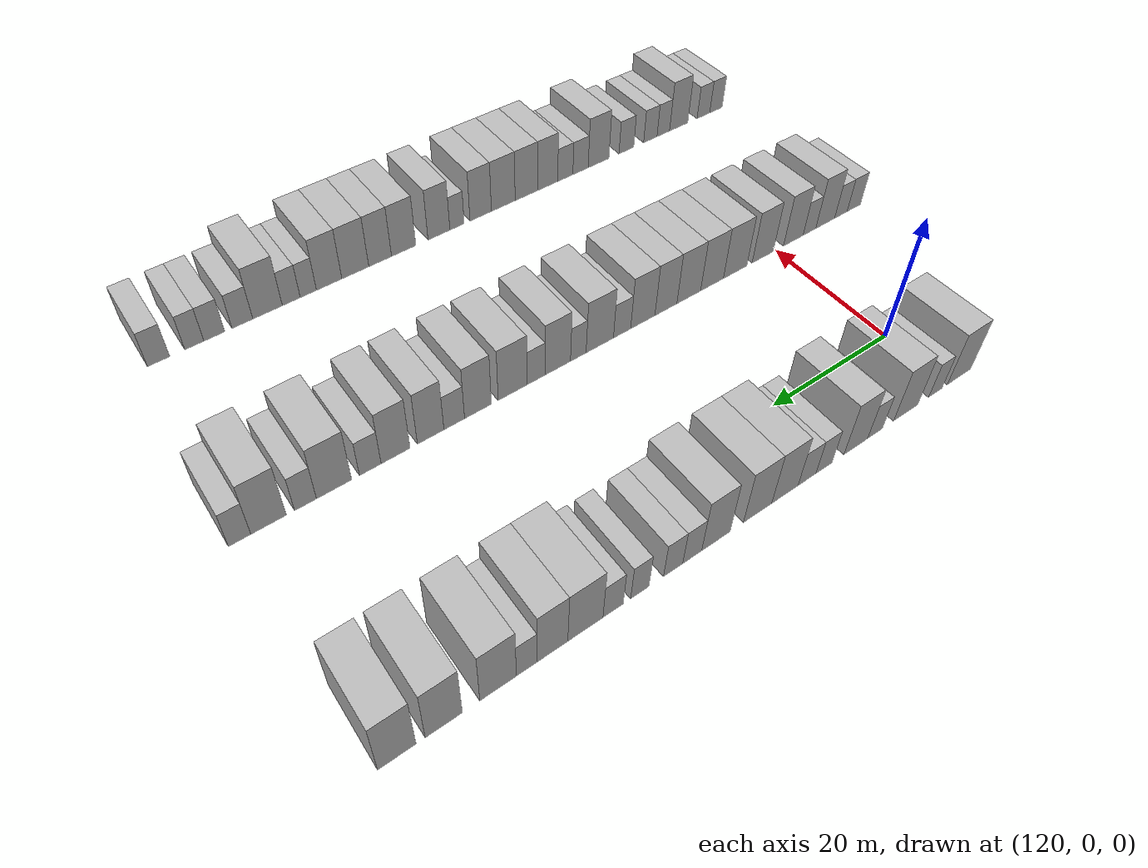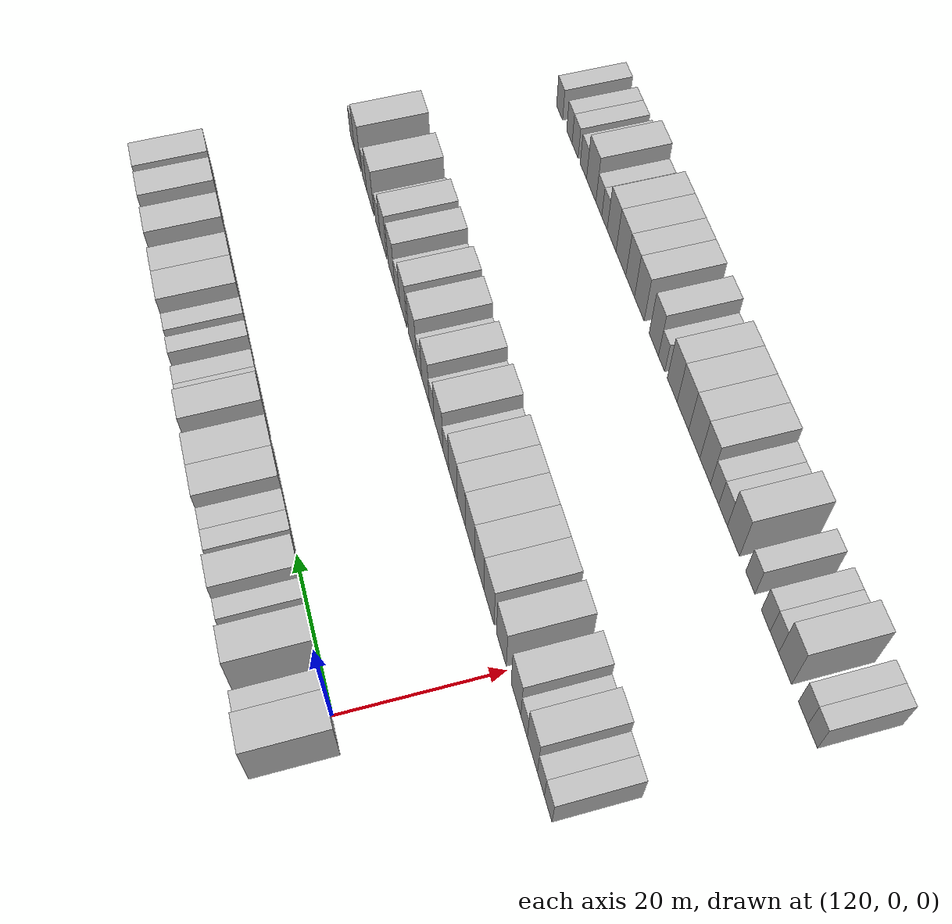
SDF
<sdf version="1.6">
 <world name="default">
  <model name="building_790">
   <static>1</static>
   <pose>115.0000 -2.2010 0 0.000000 0.000000 0.000000</pose>
   <link name="link">
    <pose>0 0 4.50 0 0 0</pose>
    <collision name="collision"><geometry><box><size>10.0000 4.4708 9.0000</size></box></geometry></collision>
    <visual name="visual">
     <cast_shadows>0</cast_shadows>
     <geometry><box><size>10.0000 4.4708 9.0000</size></box></geometry>
     <material>
      <script>
       <uri>model://HANNAS_wall/materials/scripts</uri>
       <uri>model://HANNAS_wall/materials/textures</uri>
       <name>vrc/HANNAS_wall</name>
      </script>
     </material>
    </visual>
   </link>
  </model>
  <model name="building_791">
   <static>1</static>
   <pose>115.0000 2.2759 0 0.000000 0.000000 0.000000</pose>
   <link name="link">
    <pose>0 0 3.00 0 0 0</pose>
    <collision name="collision"><geometry><box><size>10.0000 2.4830 6.0000</size></box></geometry></collision>
    <visual name="visual">
     <cast_shadows>0</cast_shadows>
     <geometry><box><size>10.0000 2.4830 6.0000</size></box></geometry>
     <material>
      <script>
       <uri>model://HANNAS_wall/materials/scripts</uri>
       <uri>model://HANNAS_wall/materials/textures</uri>
       <name>vrc/HANNAS_wall</name>
      </script>
     </material>
    </visual>
   </link>
  </model>
  <model name="building_792">
   <static>1</static>
   <pose>115.0000 7.6860 0 0.000000 0.000000 0.000000</pose>
   <link name="link">
    <pose>0 0 4.50 0 0 0</pose>
    <collision name="collision"><geometry><box><size>10.0000 4.3371 9.0000</size></box></geometry></collision>
    <visual name="visual">
     <cast_shadows>0</cast_shadows>
     <geometry><box><size>10.0000 4.3371 9.0000</size></box></geometry>
     <material>
      <script>
       <uri>model://HANNAS_wall/materials/scripts</uri>
       <uri>model://HANNAS_wall/materials/textures</uri>
       <name>vrc/HANNAS_wall</name>
      </script>
     </material>
    </visual>
   </link>
  </model>
  <model name="building_793">
   <static>1</static>
   <pose>115.0000 13.1247 0 0.000000 0.000000 0.000000</pose>
   <link name="link">
    <pose>0 0 3.00 0 0 0</pose>
    <collision name="collision"><geometry><box><size>10.0000 2.5404 6.0000</size></box></geometry></collision>
    <visual name="visual">
     <cast_shadows>0</cast_shadows>
     <geometry><box><size>10.0000 2.5404 6.0000</size></box></geometry>
     <material>
      <script>
       <uri>model://HANNAS_wall/materials/scripts</uri>
       <uri>model://HANNAS_wall/materials/textures</uri>
       <name>vrc/HANNAS_wall</name>
      </script>
     </material>
    </visual>
   </link>
  </model>
  <model name="building_794">
   <static>1</static>
   <pose>115.0000 16.4111 0 0.000000 0.000000 0.000000</pose>
   <link name="link">
    <pose>0 0 4.50 0 0 0</pose>
    <collision name="collision"><geometry><box><size>10.0000 4.0324 9.0000</size></box></geometry></collision>
    <visual name="visual">
     <cast_shadows>0</cast_shadows>
     <geometry><box><size>10.0000 4.0324 9.0000</size></box></geometry>
     <material>
      <script>
       <uri>model://HANNAS_wall/materials/scripts</uri>
       <uri>model://HANNAS_wall/materials/textures</uri>
       <name>vrc/HANNAS_wall</name>
      </script>
     </material>
    </visual>
   </link>
  </model>
  <model name="building_795">
   <static>1</static>
   <pose>115.0000 21.7420 0 0.000000 0.000000 0.000000</pose>
   <link name="link">
    <pose>0 0 3.00 0 0 0</pose>
    <collision name="collision"><geometry><box><size>10.0000 2.6294 6.0000</size></box></geometry></collision>
    <visual name="visual">
     <cast_shadows>0</cast_shadows>
     <geometry><box><size>10.0000 2.6294 6.0000</size></box></geometry>
     <material>
      <script>
       <uri>model://HANNAS_wall/materials/scripts</uri>
       <uri>model://HANNAS_wall/materials/textures</uri>
       <name>vrc/HANNAS_wall</name>
      </script>
     </material>
    </visual>
   </link>
  </model>
  <model name="building_796">
   <static>1</static>
   <pose>115.0000 24.4873 0 0.000000 0.000000 0.000000</pose>
   <link name="link">
    <pose>0 0 3.00 0 0 0</pose>
    <collision name="collision"><geometry><box><size>10.0000 2.8611 6.0000</size></box></geometry></collision>
    <visual name="visual">
     <cast_shadows>0</cast_shadows>
     <geometry><box><size>10.0000 2.8611 6.0000</size></box></geometry>
     <material>
      <script>
       <uri>model://HANNAS_wall/materials/scripts</uri>
       <uri>model://HANNAS_wall/materials/textures</uri>
       <name>vrc/HANNAS_wall</name>
      </script>
     </material>
    </visual>
   </link>
  </model>
  <model name="building_797">
   <static>1</static>
   <pose>115.0000 27.9825 0 0.000000 0.000000 0.000000</pose>
   <link name="link">
    <pose>0 0 4.50 0 0 0</pose>
    <collision name="collision"><geometry><box><size>10.0000 4.1294 9.0000</size></box></geometry></collision>
    <visual name="visual">
     <cast_shadows>0</cast_shadows>
     <geometry><box><size>10.0000 4.1294 9.0000</size></box></geometry>
     <material>
      <script>
       <uri>model://HANNAS_wall/materials/scripts</uri>
       <uri>model://HANNAS_wall/materials/textures</uri>
       <name>vrc/HANNAS_wall</name>
      </script>
     </material>
    </visual>
   </link>
  </model>
  <model name="building_798">
   <static>1</static>
   <pose>115.0000 32.2029 0 0.000000 0.000000 0.000000</pose>
   <link name="link">
    <pose>0 0 4.50 0 0 0</pose>
    <collision name="collision"><geometry><box><size>10.0000 4.3115 9.0000</size></box></geometry></collision>
    <visual name="visual">
     <cast_shadows>0</cast_shadows>
     <geometry><box><size>10.0000 4.3115 9.0000</size></box></geometry>
     <material>
      <script>
       <uri>model://HANNAS_wall/materials/scripts</uri>
       <uri>model://HANNAS_wall/materials/textures</uri>
       <name>vrc/HANNAS_wall</name>
      </script>
     </material>
    </visual>
   </link>
  </model>
  <model name="building_799">
   <static>1</static>
   <pose>115.0000 38.4328 0 0.000000 0.000000 0.000000</pose>
   <link name="link">
    <pose>0 0 4.50 0 0 0</pose>
    <collision name="collision"><geometry><box><size>10.0000 4.1482 9.0000</size></box></geometry></collision>
    <visual name="visual">
     <cast_shadows>0</cast_shadows>
     <geometry><box><size>10.0000 4.1482 9.0000</size></box></geometry>
     <material>
      <script>
       <uri>model://HANNAS_wall/materials/scripts</uri>
       <uri>model://HANNAS_wall/materials/textures</uri>
       <name>vrc/HANNAS_wall</name>
      </script>
     </material>
    </visual>
   </link>
  </model>
  <model name="building_800">
   <static>1</static>
   <pose>115.0000 41.8564 0 0.000000 0.000000 0.000000</pose>
   <link name="link">
    <pose>0 0 3.00 0 0 0</pose>
    <collision name="collision"><geometry><box><size>10.0000 2.6991 6.0000</size></box></geometry></collision>
    <visual name="visual">
     <cast_shadows>0</cast_shadows>
     <geometry><box><size>10.0000 2.6991 6.0000</size></box></geometry>
     <material>
      <script>
       <uri>model://HANNAS_wall/materials/scripts</uri>
       <uri>model://HANNAS_wall/materials/textures</uri>
       <name>vrc/HANNAS_wall</name>
      </script>
     </material>
    </visual>
   </link>
  </model>
  <model name="building_801">
   <static>1</static>
   <pose>115.0000 44.5406 0 0.000000 0.000000 0.000000</pose>
   <link name="link">
    <pose>0 0 3.00 0 0 0</pose>
    <collision name="collision"><geometry><box><size>10.0000 2.6692 6.0000</size></box></geometry></collision>
    <visual name="visual">
     <cast_shadows>0</cast_shadows>
     <geometry><box><size>10.0000 2.6692 6.0000</size></box></geometry>
     <material>
      <script>
       <uri>model://HANNAS_wall/materials/scripts</uri>
       <uri>model://HANNAS_wall/materials/textures</uri>
       <name>vrc/HANNAS_wall</name>
      </script>
     </material>
    </visual>
   </link>
  </model>
  <model name="building_802">
   <static>1</static>
   <pose>115.0000 49.1078 0 0.000000 0.000000 0.000000</pose>
   <link name="link">
    <pose>0 0 3.00 0 0 0</pose>
    <collision name="collision"><geometry><box><size>10.0000 2.4652 6.0000</size></box></geometry></collision>
    <visual name="visual">
     <cast_shadows>0</cast_shadows>
     <geometry><box><size>10.0000 2.4652 6.0000</size></box></geometry>
     <material>
      <script>
       <uri>model://HANNAS_wall/materials/scripts</uri>
       <uri>model://HANNAS_wall/materials/textures</uri>
       <name>vrc/HANNAS_wall</name>
      </script>
     </material>
    </visual>
   </link>
  </model>
  <model name="building_803">
   <static>1</static>
   <pose>115.0000 52.6654 0 0.000000 0.000000 0.000000</pose>
   <link name="link">
    <pose>0 0 3.00 0 0 0</pose>
    <collision name="collision"><geometry><box><size>10.0000 2.6500 6.0000</size></box></geometry></collision>
    <visual name="visual">
     <cast_shadows>0</cast_shadows>
     <geometry><box><size>10.0000 2.6500 6.0000</size></box></geometry>
     <material>
      <script>
       <uri>model://HANNAS_wall/materials/scripts</uri>
       <uri>model://HANNAS_wall/materials/textures</uri>
       <name>vrc/HANNAS_wall</name>
      </script>
     </material>
    </visual>
   </link>
  </model>
  <model name="building_804">
   <static>1</static>
   <pose>115.0000 56.2390 0 0.000000 0.000000 0.000000</pose>
   <link name="link">
    <pose>0 0 4.50 0 0 0</pose>
    <collision name="collision"><geometry><box><size>10.0000 4.4972 9.0000</size></box></geometry></collision>
    <visual name="visual">
     <cast_shadows>0</cast_shadows>
     <geometry><box><size>10.0000 4.4972 9.0000</size></box></geometry>
     <material>
      <script>
       <uri>model://HANNAS_wall/materials/scripts</uri>
       <uri>model://HANNAS_wall/materials/textures</uri>
       <name>vrc/HANNAS_wall</name>
      </script>
     </material>
    </visual>
   </link>
  </model>
  <model name="building_805">
   <static>1</static>
   <pose>115.0000 60.3884 0 0.000000 0.000000 0.000000</pose>
   <link name="link">
    <pose>0 0 4.50 0 0 0</pose>
    <collision name="collision"><geometry><box><size>10.0000 3.8016 9.0000</size></box></geometry></collision>
    <visual name="visual">
     <cast_shadows>0</cast_shadows>
     <geometry><box><size>10.0000 3.8016 9.0000</size></box></geometry>
     <material>
      <script>
       <uri>model://HANNAS_wall/materials/scripts</uri>
       <uri>model://HANNAS_wall/materials/textures</uri>
       <name>vrc/HANNAS_wall</name>
      </script>
     </material>
    </visual>
   </link>
  </model>
  <model name="building_806">
   <static>1</static>
   <pose>115.0000 63.5414 0 0.000000 0.000000 0.000000</pose>
   <link name="link">
    <pose>0 0 3.00 0 0 0</pose>
    <collision name="collision"><geometry><box><size>10.0000 2.5044 6.0000</size></box></geometry></collision>
    <visual name="visual">
     <cast_shadows>0</cast_shadows>
     <geometry><box><size>10.0000 2.5044 6.0000</size></box></geometry>
     <material>
      <script>
       <uri>model://HANNAS_wall/materials/scripts</uri>
       <uri>model://HANNAS_wall/materials/textures</uri>
       <name>vrc/HANNAS_wall</name>
      </script>
     </material>
    </visual>
   </link>
  </model>
  <model name="building_807">
   <static>1</static>
   <pose>115.0000 66.9385 0 0.000000 0.000000 0.000000</pose>
   <link name="link">
    <pose>0 0 4.50 0 0 0</pose>
    <collision name="collision"><geometry><box><size>10.0000 4.2898 9.0000</size></box></geometry></collision>
    <visual name="visual">
     <cast_shadows>0</cast_shadows>
     <geometry><box><size>10.0000 4.2898 9.0000</size></box></geometry>
     <material>
      <script>
       <uri>model://HANNAS_wall/materials/scripts</uri>
       <uri>model://HANNAS_wall/materials/textures</uri>
       <name>vrc/HANNAS_wall</name>
      </script>
     </material>
    </visual>
   </link>
  </model>
  <model name="building_808">
   <static>1</static>
   <pose>115.0000 73.1602 0 0.000000 0.000000 0.000000</pose>
   <link name="link">
    <pose>0 0 4.50 0 0 0</pose>
    <collision name="collision"><geometry><box><size>10.0000 4.1535 9.0000</size></box></geometry></collision>
    <visual name="visual">
     <cast_shadows>0</cast_shadows>
     <geometry><box><size>10.0000 4.1535 9.0000</size></box></geometry>
     <material>
      <script>
       <uri>model://HANNAS_wall/materials/scripts</uri>
       <uri>model://HANNAS_wall/materials/textures</uri>
       <name>vrc/HANNAS_wall</name>
      </script>
     </material>
    </visual>
   </link>
  </model>
  <model name="building_809">
   <static>1</static>
   <pose>115.0000 78.3030 0 0.000000 0.000000 0.000000</pose>
   <link name="link">
    <pose>0 0 4.50 0 0 0</pose>
    <collision name="collision"><geometry><box><size>10.0000 4.1321 9.0000</size></box></geometry></collision>
    <visual name="visual">
     <cast_shadows>0</cast_shadows>
     <geometry><box><size>10.0000 4.1321 9.0000</size></box></geometry>
     <material>
      <script>
       <uri>model://HANNAS_wall/materials/scripts</uri>
       <uri>model://HANNAS_wall/materials/textures</uri>
       <name>vrc/HANNAS_wall</name>
      </script>
     </material>
    </visual>
   </link>
  </model>
  <model name="building_1020">
   <static>1</static>
   <pose>145.0000 -15.7848 0 0.000000 0.000000 0.000000</pose>
   <link name="link">
    <pose>0 0 3.00 0 0 0</pose>
    <collision name="collision"><geometry><box><size>10.0000 2.8089 6.0000</size></box></geometry></collision>
    <visual name="visual">
     <cast_shadows>0</cast_shadows>
     <geometry><box><size>10.0000 2.8089 6.0000</size></box></geometry>
     <material>
      <script>
       <uri>model://HANNAS_wall/materials/scripts</uri>
       <uri>model://HANNAS_wall/materials/textures</uri>
       <name>vrc/HANNAS_wall</name>
      </script>
     </material>
    </visual>
   </link>
  </model>
  <model name="building_1021">
   <static>1</static>
   <pose>145.0000 -13.0780 0 0.000000 0.000000 0.000000</pose>
   <link name="link">
    <pose>0 0 3.00 0 0 0</pose>
    <collision name="collision"><geometry><box><size>10.0000 2.6047 6.0000</size></box></geometry></collision>
    <visual name="visual">
     <cast_shadows>0</cast_shadows>
     <geometry><box><size>10.0000 2.6047 6.0000</size></box></geometry>
     <material>
      <script>
       <uri>model://HANNAS_wall/materials/scripts</uri>
       <uri>model://HANNAS_wall/materials/textures</uri>
       <name>vrc/HANNAS_wall</name>
      </script>
     </material>
    </visual>
   </link>
  </model>
  <model name="building_1022">
   <static>1</static>
   <pose>145.0000 -9.8410 0 0.000000 0.000000 0.000000</pose>
   <link name="link">
    <pose>0 0 4.50 0 0 0</pose>
    <collision name="collision"><geometry><box><size>10.0000 3.8694 9.0000</size></box></geometry></collision>
    <visual name="visual">
     <cast_shadows>0</cast_shadows>
     <geometry><box><size>10.0000 3.8694 9.0000</size></box></geometry>
     <material>
      <script>
       <uri>model://HANNAS_wall/materials/scripts</uri>
       <uri>model://HANNAS_wall/materials/textures</uri>
       <name>vrc/HANNAS_wall</name>
      </script>
     </material>
    </visual>
   </link>
  </model>
  <model name="building_1023">
   <static>1</static>
   <pose>145.0000 -6.6318 0 0.000000 0.000000 0.000000</pose>
   <link name="link">
    <pose>0 0 3.00 0 0 0</pose>
    <collision name="collision"><geometry><box><size>10.0000 2.5489 6.0000</size></box></geometry></collision>
    <visual name="visual">
     <cast_shadows>0</cast_shadows>
     <geometry><box><size>10.0000 2.5489 6.0000</size></box></geometry>
     <material>
      <script>
       <uri>model://HANNAS_wall/materials/scripts</uri>
       <uri>model://HANNAS_wall/materials/textures</uri>
       <name>vrc/HANNAS_wall</name>
      </script>
     </material>
    </visual>
   </link>
  </model>
  <model name="building_1024">
   <static>1</static>
   <pose>145.0000 -3.4176 0 0.000000 0.000000 0.000000</pose>
   <link name="link">
    <pose>0 0 4.50 0 0 0</pose>
    <collision name="collision"><geometry><box><size>10.0000 3.8796 9.0000</size></box></geometry></collision>
    <visual name="visual">
     <cast_shadows>0</cast_shadows>
     <geometry><box><size>10.0000 3.8796 9.0000</size></box></geometry>
     <material>
      <script>
       <uri>model://HANNAS_wall/materials/scripts</uri>
       <uri>model://HANNAS_wall/materials/textures</uri>
       <name>vrc/HANNAS_wall</name>
      </script>
     </material>
    </visual>
   </link>
  </model>
  <model name="building_1025">
   <static>1</static>
   <pose>145.0000 2.5430 0 0.000000 0.000000 0.000000</pose>
   <link name="link">
    <pose>0 0 4.50 0 0 0</pose>
    <collision name="collision"><geometry><box><size>10.0000 4.0416 9.0000</size></box></geometry></collision>
    <visual name="visual">
     <cast_shadows>0</cast_shadows>
     <geometry><box><size>10.0000 4.0416 9.0000</size></box></geometry>
     <material>
      <script>
       <uri>model://HANNAS_wall/materials/scripts</uri>
       <uri>model://HANNAS_wall/materials/textures</uri>
       <name>vrc/HANNAS_wall</name>
      </script>
     </material>
    </visual>
   </link>
  </model>
  <model name="building_1026">
   <static>1</static>
   <pose>145.0000 7.7406 0 0.000000 0.000000 0.000000</pose>
   <link name="link">
    <pose>0 0 4.50 0 0 0</pose>
    <collision name="collision"><geometry><box><size>10.0000 4.3536 9.0000</size></box></geometry></collision>
    <visual name="visual">
     <cast_shadows>0</cast_shadows>
     <geometry><box><size>10.0000 4.3536 9.0000</size></box></geometry>
     <material>
      <script>
       <uri>model://HANNAS_wall/materials/scripts</uri>
       <uri>model://HANNAS_wall/materials/textures</uri>
       <name>vrc/HANNAS_wall</name>
      </script>
     </material>
    </visual>
   </link>
  </model>
  <model name="building_1027">
   <static>1</static>
   <pose>145.0000 11.9843 0 0.000000 0.000000 0.000000</pose>
   <link name="link">
    <pose>0 0 4.50 0 0 0</pose>
    <collision name="collision"><geometry><box><size>10.0000 4.1339 9.0000</size></box></geometry></collision>
    <visual name="visual">
     <cast_shadows>0</cast_shadows>
     <geometry><box><size>10.0000 4.1339 9.0000</size></box></geometry>
     <material>
      <script>
       <uri>model://HANNAS_wall/materials/scripts</uri>
       <uri>model://HANNAS_wall/materials/textures</uri>
       <name>vrc/HANNAS_wall</name>
      </script>
     </material>
    </visual>
   </link>
  </model>
  <model name="building_1028">
   <static>1</static>
   <pose>145.0000 16.1614 0 0.000000 0.000000 0.000000</pose>
   <link name="link">
    <pose>0 0 4.50 0 0 0</pose>
    <collision name="collision"><geometry><box><size>10.0000 4.2203 9.0000</size></box></geometry></collision>
    <visual name="visual">
     <cast_shadows>0</cast_shadows>
     <geometry><box><size>10.0000 4.2203 9.0000</size></box></geometry>
     <material>
      <script>
       <uri>model://HANNAS_wall/materials/scripts</uri>
       <uri>model://HANNAS_wall/materials/textures</uri>
       <name>vrc/HANNAS_wall</name>
      </script>
     </material>
    </visual>
   </link>
  </model>
  <model name="building_1029">
   <static>1</static>
   <pose>145.0000 20.1724 0 0.000000 0.000000 0.000000</pose>
   <link name="link">
    <pose>0 0 4.50 0 0 0</pose>
    <collision name="collision"><geometry><box><size>10.0000 3.8017 9.0000</size></box></geometry></collision>
    <visual name="visual">
     <cast_shadows>0</cast_shadows>
     <geometry><box><size>10.0000 3.8017 9.0000</size></box></geometry>
     <material>
      <script>
       <uri>model://HANNAS_wall/materials/scripts</uri>
       <uri>model://HANNAS_wall/materials/textures</uri>
       <name>vrc/HANNAS_wall</name>
      </script>
     </material>
    </visual>
   </link>
  </model>
  <model name="building_1030">
   <static>1</static>
   <pose>145.0000 24.1235 0 0.000000 0.000000 0.000000</pose>
   <link name="link">
    <pose>0 0 4.50 0 0 0</pose>
    <collision name="collision"><geometry><box><size>10.0000 4.1004 9.0000</size></box></geometry></collision>
    <visual name="visual">
     <cast_shadows>0</cast_shadows>
     <geometry><box><size>10.0000 4.1004 9.0000</size></box></geometry>
     <material>
      <script>
       <uri>model://HANNAS_wall/materials/scripts</uri>
       <uri>model://HANNAS_wall/materials/textures</uri>
       <name>vrc/HANNAS_wall</name>
      </script>
     </material>
    </visual>
   </link>
  </model>
  <model name="building_1031">
   <static>1</static>
   <pose>145.0000 27.5968 0 0.000000 0.000000 0.000000</pose>
   <link name="link">
    <pose>0 0 3.00 0 0 0</pose>
    <collision name="collision"><geometry><box><size>10.0000 2.8462 6.0000</size></box></geometry></collision>
    <visual name="visual">
     <cast_shadows>0</cast_shadows>
     <geometry><box><size>10.0000 2.8462 6.0000</size></box></geometry>
     <material>
      <script>
       <uri>model://HANNAS_wall/materials/scripts</uri>
       <uri>model://HANNAS_wall/materials/textures</uri>
       <name>vrc/HANNAS_wall</name>
      </script>
     </material>
    </visual>
   </link>
  </model>
  <model name="building_1032">
   <static>1</static>
   <pose>145.0000 31.2378 0 0.000000 0.000000 0.000000</pose>
   <link name="link">
    <pose>0 0 4.50 0 0 0</pose>
    <collision name="collision"><geometry><box><size>10.0000 4.4359 9.0000</size></box></geometry></collision>
    <visual name="visual">
     <cast_shadows>0</cast_shadows>
     <geometry><box><size>10.0000 4.4359 9.0000</size></box></geometry>
     <material>
      <script>
       <uri>model://HANNAS_wall/materials/scripts</uri>
       <uri>model://HANNAS_wall/materials/textures</uri>
       <name>vrc/HANNAS_wall</name>
      </script>
     </material>
    </visual>
   </link>
  </model>
  <model name="building_1033">
   <static>1</static>
   <pose>145.0000 34.6940 0 0.000000 0.000000 0.000000</pose>
   <link name="link">
    <pose>0 0 3.00 0 0 0</pose>
    <collision name="collision"><geometry><box><size>10.0000 2.4764 6.0000</size></box></geometry></collision>
    <visual name="visual">
     <cast_shadows>0</cast_shadows>
     <geometry><box><size>10.0000 2.4764 6.0000</size></box></geometry>
     <material>
      <script>
       <uri>model://HANNAS_wall/materials/scripts</uri>
       <uri>model://HANNAS_wall/materials/textures</uri>
       <name>vrc/HANNAS_wall</name>
      </script>
     </material>
    </visual>
   </link>
  </model>
  <model name="building_1034">
   <static>1</static>
   <pose>145.0000 37.9065 0 0.000000 0.000000 0.000000</pose>
   <link name="link">
    <pose>0 0 4.50 0 0 0</pose>
    <collision name="collision"><geometry><box><size>10.0000 3.9487 9.0000</size></box></geometry></collision>
    <visual name="visual">
     <cast_shadows>0</cast_shadows>
     <geometry><box><size>10.0000 3.9487 9.0000</size></box></geometry>
     <material>
      <script>
       <uri>model://HANNAS_wall/materials/scripts</uri>
       <uri>model://HANNAS_wall/materials/textures</uri>
       <name>vrc/HANNAS_wall</name>
      </script>
     </material>
    </visual>
   </link>
  </model>
  <model name="building_1035">
   <static>1</static>
   <pose>145.0000 41.2516 0 0.000000 0.000000 0.000000</pose>
   <link name="link">
    <pose>0 0 3.00 0 0 0</pose>
    <collision name="collision"><geometry><box><size>10.0000 2.7415 6.0000</size></box></geometry></collision>
    <visual name="visual">
     <cast_shadows>0</cast_shadows>
     <geometry><box><size>10.0000 2.7415 6.0000</size></box></geometry>
     <material>
      <script>
       <uri>model://HANNAS_wall/materials/scripts</uri>
       <uri>model://HANNAS_wall/materials/textures</uri>
       <name>vrc/HANNAS_wall</name>
      </script>
     </material>
    </visual>
   </link>
  </model>
  <model name="building_1036">
   <static>1</static>
   <pose>145.0000 44.7748 0 0.000000 0.000000 0.000000</pose>
   <link name="link">
    <pose>0 0 4.50 0 0 0</pose>
    <collision name="collision"><geometry><box><size>10.0000 4.3049 9.0000</size></box></geometry></collision>
    <visual name="visual">
     <cast_shadows>0</cast_shadows>
     <geometry><box><size>10.0000 4.3049 9.0000</size></box></geometry>
     <material>
      <script>
       <uri>model://HANNAS_wall/materials/scripts</uri>
       <uri>model://HANNAS_wall/materials/textures</uri>
       <name>vrc/HANNAS_wall</name>
      </script>
     </material>
    </visual>
   </link>
  </model>
  <model name="building_1037">
   <static>1</static>
   <pose>145.0000 49.8539 0 0.000000 0.000000 0.000000</pose>
   <link name="link">
    <pose>0 0 4.50 0 0 0</pose>
    <collision name="collision"><geometry><box><size>10.0000 3.8533 9.0000</size></box></geometry></collision>
    <visual name="visual">
     <cast_shadows>0</cast_shadows>
     <geometry><box><size>10.0000 3.8533 9.0000</size></box></geometry>
     <material>
      <script>
       <uri>model://HANNAS_wall/materials/scripts</uri>
       <uri>model://HANNAS_wall/materials/textures</uri>
       <name>vrc/HANNAS_wall</name>
      </script>
     </material>
    </visual>
   </link>
  </model>
  <model name="building_1038">
   <static>1</static>
   <pose>145.0000 53.2331 0 0.000000 0.000000 0.000000</pose>
   <link name="link">
    <pose>0 0 3.00 0 0 0</pose>
    <collision name="collision"><geometry><box><size>10.0000 2.9052 6.0000</size></box></geometry></collision>
    <visual name="visual">
     <cast_shadows>0</cast_shadows>
     <geometry><box><size>10.0000 2.9052 6.0000</size></box></geometry>
     <material>
      <script>
       <uri>model://HANNAS_wall/materials/scripts</uri>
       <uri>model://HANNAS_wall/materials/textures</uri>
       <name>vrc/HANNAS_wall</name>
      </script>
     </material>
    </visual>
   </link>
  </model>
  <model name="building_1039">
   <static>1</static>
   <pose>145.0000 56.5175 0 0.000000 0.000000 0.000000</pose>
   <link name="link">
    <pose>0 0 4.50 0 0 0</pose>
    <collision name="collision"><geometry><box><size>10.0000 3.6636 9.0000</size></box></geometry></collision>
    <visual name="visual">
     <cast_shadows>0</cast_shadows>
     <geometry><box><size>10.0000 3.6636 9.0000</size></box></geometry>
     <material>
      <script>
       <uri>model://HANNAS_wall/materials/scripts</uri>
       <uri>model://HANNAS_wall/materials/textures</uri>
       <name>vrc/HANNAS_wall</name>
      </script>
     </material>
    </visual>
   </link>
  </model>
  <model name="building_1040">
   <static>1</static>
   <pose>145.0000 61.2851 0 0.000000 0.000000 0.000000</pose>
   <link name="link">
    <pose>0 0 4.50 0 0 0</pose>
    <collision name="collision"><geometry><box><size>10.0000 3.8715 9.0000</size></box></geometry></collision>
    <visual name="visual">
     <cast_shadows>0</cast_shadows>
     <geometry><box><size>10.0000 3.8715 9.0000</size></box></geometry>
     <material>
      <script>
       <uri>model://HANNAS_wall/materials/scripts</uri>
       <uri>model://HANNAS_wall/materials/textures</uri>
       <name>vrc/HANNAS_wall</name>
      </script>
     </material>
    </visual>
   </link>
  </model>
  <model name="building_1041">
   <static>1</static>
   <pose>145.0000 64.6400 0 0.000000 0.000000 0.000000</pose>
   <link name="link">
    <pose>0 0 3.00 0 0 0</pose>
    <collision name="collision"><geometry><box><size>10.0000 2.8383 6.0000</size></box></geometry></collision>
    <visual name="visual">
     <cast_shadows>0</cast_shadows>
     <geometry><box><size>10.0000 2.8383 6.0000</size></box></geometry>
     <material>
      <script>
       <uri>model://HANNAS_wall/materials/scripts</uri>
       <uri>model://HANNAS_wall/materials/textures</uri>
       <name>vrc/HANNAS_wall</name>
      </script>
     </material>
    </visual>
   </link>
  </model>
  <model name="building_1042">
   <static>1</static>
   <pose>145.0000 69.2914 0 0.000000 0.000000 0.000000</pose>
   <link name="link">
    <pose>0 0 4.50 0 0 0</pose>
    <collision name="collision"><geometry><box><size>10.0000 4.4645 9.0000</size></box></geometry></collision>
    <visual name="visual">
     <cast_shadows>0</cast_shadows>
     <geometry><box><size>10.0000 4.4645 9.0000</size></box></geometry>
     <material>
      <script>
       <uri>model://HANNAS_wall/materials/scripts</uri>
       <uri>model://HANNAS_wall/materials/textures</uri>
       <name>vrc/HANNAS_wall</name>
      </script>
     </material>
    </visual>
   </link>
  </model>
  <model name="building_1043">
   <static>1</static>
   <pose>145.0000 72.8791 0 0.000000 0.000000 0.000000</pose>
   <link name="link">
    <pose>0 0 3.00 0 0 0</pose>
    <collision name="collision"><geometry><box><size>10.0000 2.7108 6.0000</size></box></geometry></collision>
    <visual name="visual">
     <cast_shadows>0</cast_shadows>
     <geometry><box><size>10.0000 2.7108 6.0000</size></box></geometry>
     <material>
      <script>
       <uri>model://HANNAS_wall/materials/scripts</uri>
       <uri>model://HANNAS_wall/materials/textures</uri>
       <name>vrc/HANNAS_wall</name>
      </script>
     </material>
    </visual>
   </link>
  </model>
  <model name="building_1044">
   <static>1</static>
   <pose>145.0000 77.3612 0 0.000000 0.000000 0.000000</pose>
   <link name="link">
    <pose>0 0 4.50 0 0 0</pose>
    <collision name="collision"><geometry><box><size>10.0000 4.2534 9.0000</size></box></geometry></collision>
    <visual name="visual">
     <cast_shadows>0</cast_shadows>
     <geometry><box><size>10.0000 4.2534 9.0000</size></box></geometry>
     <material>
      <script>
       <uri>model://HANNAS_wall/materials/scripts</uri>
       <uri>model://HANNAS_wall/materials/textures</uri>
       <name>vrc/HANNAS_wall</name>
      </script>
     </material>
    </visual>
   </link>
  </model>
  <model name="building_1045">
   <static>1</static>
   <pose>145.0000 80.8040 0 0.000000 0.000000 0.000000</pose>
   <link name="link">
    <pose>0 0 3.00 0 0 0</pose>
    <collision name="collision"><geometry><box><size>10.0000 2.6322 6.0000</size></box></geometry></collision>
    <visual name="visual">
     <cast_shadows>0</cast_shadows>
     <geometry><box><size>10.0000 2.6322 6.0000</size></box></geometry>
     <material>
      <script>
       <uri>model://HANNAS_wall/materials/scripts</uri>
       <uri>model://HANNAS_wall/materials/textures</uri>
       <name>vrc/HANNAS_wall</name>
      </script>
     </material>
    </visual>
   </link>
  </model>
  <model name="building_1245">
   <static>1</static>
   <pose>175.0000 -15.8351 0 0.000000 0.000000 0.000000</pose>
   <link name="link">
    <pose>0 0 3.00 0 0 0</pose>
    <collision name="collision"><geometry><box><size>10.0000 2.6934 6.0000</size></box></geometry></collision>
    <visual name="visual">
     <cast_shadows>0</cast_shadows>
     <geometry><box><size>10.0000 2.6934 6.0000</size></box></geometry>
     <material>
      <script>
       <uri>model://HANNAS_wall/materials/scripts</uri>
       <uri>model://HANNAS_wall/materials/textures</uri>
       <name>vrc/HANNAS_wall</name>
      </script>
     </material>
    </visual>
   </link>
  </model>
  <model name="building_1246">
   <static>1</static>
   <pose>175.0000 -13.1291 0 0.000000 0.000000 0.000000</pose>
   <link name="link">
    <pose>0 0 3.00 0 0 0</pose>
    <collision name="collision"><geometry><box><size>10.0000 2.7186 6.0000</size></box></geometry></collision>
    <visual name="visual">
     <cast_shadows>0</cast_shadows>
     <geometry><box><size>10.0000 2.7186 6.0000</size></box></geometry>
     <material>
      <script>
       <uri>model://HANNAS_wall/materials/scripts</uri>
       <uri>model://HANNAS_wall/materials/textures</uri>
       <name>vrc/HANNAS_wall</name>
      </script>
     </material>
    </visual>
   </link>
  </model>
  <model name="building_1247">
   <static>1</static>
   <pose>175.0000 -7.8546 0 0.000000 0.000000 0.000000</pose>
   <link name="link">
    <pose>0 0 4.50 0 0 0</pose>
    <collision name="collision"><geometry><box><size>10.0000 3.8303 9.0000</size></box></geometry></collision>
    <visual name="visual">
     <cast_shadows>0</cast_shadows>
     <geometry><box><size>10.0000 3.8303 9.0000</size></box></geometry>
     <material>
      <script>
       <uri>model://HANNAS_wall/materials/scripts</uri>
       <uri>model://HANNAS_wall/materials/textures</uri>
       <name>vrc/HANNAS_wall</name>
      </script>
     </material>
    </visual>
   </link>
  </model>
  <model name="building_1248">
   <static>1</static>
   <pose>175.0000 -4.6460 0 0.000000 0.000000 0.000000</pose>
   <link name="link">
    <pose>0 0 3.00 0 0 0</pose>
    <collision name="collision"><geometry><box><size>10.0000 2.5870 6.0000</size></box></geometry></collision>
    <visual name="visual">
     <cast_shadows>0</cast_shadows>
     <geometry><box><size>10.0000 2.5870 6.0000</size></box></geometry>
     <material>
      <script>
       <uri>model://HANNAS_wall/materials/scripts</uri>
       <uri>model://HANNAS_wall/materials/textures</uri>
       <name>vrc/HANNAS_wall</name>
      </script>
     </material>
    </visual>
   </link>
  </model>
  <model name="building_1249">
   <static>1</static>
   <pose>175.0000 -1.9851 0 0.000000 0.000000 0.000000</pose>
   <link name="link">
    <pose>0 0 3.00 0 0 0</pose>
    <collision name="collision"><geometry><box><size>10.0000 2.7348 6.0000</size></box></geometry></collision>
    <visual name="visual">
     <cast_shadows>0</cast_shadows>
     <geometry><box><size>10.0000 2.7348 6.0000</size></box></geometry>
     <material>
      <script>
       <uri>model://HANNAS_wall/materials/scripts</uri>
       <uri>model://HANNAS_wall/materials/textures</uri>
       <name>vrc/HANNAS_wall</name>
      </script>
     </material>
    </visual>
   </link>
  </model>
  <model name="building_1250">
   <static>1</static>
   <pose>175.0000 2.8503 0 0.000000 0.000000 0.000000</pose>
   <link name="link">
    <pose>0 0 3.00 0 0 0</pose>
    <collision name="collision"><geometry><box><size>10.0000 2.9360 6.0000</size></box></geometry></collision>
    <visual name="visual">
     <cast_shadows>0</cast_shadows>
     <geometry><box><size>10.0000 2.9360 6.0000</size></box></geometry>
     <material>
      <script>
       <uri>model://HANNAS_wall/materials/scripts</uri>
       <uri>model://HANNAS_wall/materials/textures</uri>
       <name>vrc/HANNAS_wall</name>
      </script>
     </material>
    </visual>
   </link>
  </model>
  <model name="building_1251">
   <static>1</static>
   <pose>175.0000 8.3342 0 0.000000 0.000000 0.000000</pose>
   <link name="link">
    <pose>0 0 4.50 0 0 0</pose>
    <collision name="collision"><geometry><box><size>10.0000 4.0317 9.0000</size></box></geometry></collision>
    <visual name="visual">
     <cast_shadows>0</cast_shadows>
     <geometry><box><size>10.0000 4.0317 9.0000</size></box></geometry>
     <material>
      <script>
       <uri>model://HANNAS_wall/materials/scripts</uri>
       <uri>model://HANNAS_wall/materials/textures</uri>
       <name>vrc/HANNAS_wall</name>
      </script>
     </material>
    </visual>
   </link>
  </model>
  <model name="building_1252">
   <static>1</static>
   <pose>175.0000 11.8070 0 0.000000 0.000000 0.000000</pose>
   <link name="link">
    <pose>0 0 3.00 0 0 0</pose>
    <collision name="collision"><geometry><box><size>10.0000 2.9138 6.0000</size></box></geometry></collision>
    <visual name="visual">
     <cast_shadows>0</cast_shadows>
     <geometry><box><size>10.0000 2.9138 6.0000</size></box></geometry>
     <material>
      <script>
       <uri>model://HANNAS_wall/materials/scripts</uri>
       <uri>model://HANNAS_wall/materials/textures</uri>
       <name>vrc/HANNAS_wall</name>
      </script>
     </material>
    </visual>
   </link>
  </model>
  <model name="building_1253">
   <static>1</static>
   <pose>175.0000 14.6904 0 0.000000 0.000000 0.000000</pose>
   <link name="link">
    <pose>0 0 3.00 0 0 0</pose>
    <collision name="collision"><geometry><box><size>10.0000 2.8531 6.0000</size></box></geometry></collision>
    <visual name="visual">
     <cast_shadows>0</cast_shadows>
     <geometry><box><size>10.0000 2.8531 6.0000</size></box></geometry>
     <material>
      <script>
       <uri>model://HANNAS_wall/materials/scripts</uri>
       <uri>model://HANNAS_wall/materials/textures</uri>
       <name>vrc/HANNAS_wall</name>
      </script>
     </material>
    </visual>
   </link>
  </model>
  <model name="building_1254">
   <static>1</static>
   <pose>175.0000 17.9651 0 0.000000 0.000000 0.000000</pose>
   <link name="link">
    <pose>0 0 4.50 0 0 0</pose>
    <collision name="collision"><geometry><box><size>10.0000 3.6962 9.0000</size></box></geometry></collision>
    <visual name="visual">
     <cast_shadows>0</cast_shadows>
     <geometry><box><size>10.0000 3.6962 9.0000</size></box></geometry>
     <material>
      <script>
       <uri>model://HANNAS_wall/materials/scripts</uri>
       <uri>model://HANNAS_wall/materials/textures</uri>
       <name>vrc/HANNAS_wall</name>
      </script>
     </material>
    </visual>
   </link>
  </model>
  <model name="building_1255">
   <static>1</static>
   <pose>175.0000 21.8473 0 0.000000 0.000000 0.000000</pose>
   <link name="link">
    <pose>0 0 4.50 0 0 0</pose>
    <collision name="collision"><geometry><box><size>10.0000 4.0684 9.0000</size></box></geometry></collision>
    <visual name="visual">
     <cast_shadows>0</cast_shadows>
     <geometry><box><size>10.0000 4.0684 9.0000</size></box></geometry>
     <material>
      <script>
       <uri>model://HANNAS_wall/materials/scripts</uri>
       <uri>model://HANNAS_wall/materials/textures</uri>
       <name>vrc/HANNAS_wall</name>
      </script>
     </material>
    </visual>
   </link>
  </model>
  <model name="building_1256">
   <static>1</static>
   <pose>175.0000 25.9872 0 0.000000 0.000000 0.000000</pose>
   <link name="link">
    <pose>0 0 4.50 0 0 0</pose>
    <collision name="collision"><geometry><box><size>10.0000 4.2113 9.0000</size></box></geometry></collision>
    <visual name="visual">
     <cast_shadows>0</cast_shadows>
     <geometry><box><size>10.0000 4.2113 9.0000</size></box></geometry>
     <material>
      <script>
       <uri>model://HANNAS_wall/materials/scripts</uri>
       <uri>model://HANNAS_wall/materials/textures</uri>
       <name>vrc/HANNAS_wall</name>
      </script>
     </material>
    </visual>
   </link>
  </model>
  <model name="building_1257">
   <static>1</static>
   <pose>175.0000 29.9501 0 0.000000 0.000000 0.000000</pose>
   <link name="link">
    <pose>0 0 4.50 0 0 0</pose>
    <collision name="collision"><geometry><box><size>10.0000 3.7146 9.0000</size></box></geometry></collision>
    <visual name="visual">
     <cast_shadows>0</cast_shadows>
     <geometry><box><size>10.0000 3.7146 9.0000</size></box></geometry>
     <material>
      <script>
       <uri>model://HANNAS_wall/materials/scripts</uri>
       <uri>model://HANNAS_wall/materials/textures</uri>
       <name>vrc/HANNAS_wall</name>
      </script>
     </material>
    </visual>
   </link>
  </model>
  <model name="building_1258">
   <static>1</static>
   <pose>175.0000 34.0162 0 0.000000 0.000000 0.000000</pose>
   <link name="link">
    <pose>0 0 3.00 0 0 0</pose>
    <collision name="collision"><geometry><box><size>10.0000 2.4177 6.0000</size></box></geometry></collision>
    <visual name="visual">
     <cast_shadows>0</cast_shadows>
     <geometry><box><size>10.0000 2.4177 6.0000</size></box></geometry>
     <material>
      <script>
       <uri>model://HANNAS_wall/materials/scripts</uri>
       <uri>model://HANNAS_wall/materials/textures</uri>
       <name>vrc/HANNAS_wall</name>
      </script>
     </material>
    </visual>
   </link>
  </model>
  <model name="building_1259">
   <static>1</static>
   <pose>175.0000 37.0467 0 0.000000 0.000000 0.000000</pose>
   <link name="link">
    <pose>0 0 4.50 0 0 0</pose>
    <collision name="collision"><geometry><box><size>10.0000 3.6433 9.0000</size></box></geometry></collision>
    <visual name="visual">
     <cast_shadows>0</cast_shadows>
     <geometry><box><size>10.0000 3.6433 9.0000</size></box></geometry>
     <material>
      <script>
       <uri>model://HANNAS_wall/materials/scripts</uri>
       <uri>model://HANNAS_wall/materials/textures</uri>
       <name>vrc/HANNAS_wall</name>
      </script>
     </material>
    </visual>
   </link>
  </model>
  <model name="building_1260">
   <static>1</static>
   <pose>175.0000 42.8322 0 0.000000 0.000000 0.000000</pose>
   <link name="link">
    <pose>0 0 4.50 0 0 0</pose>
    <collision name="collision"><geometry><box><size>10.0000 3.9276 9.0000</size></box></geometry></collision>
    <visual name="visual">
     <cast_shadows>0</cast_shadows>
     <geometry><box><size>10.0000 3.9276 9.0000</size></box></geometry>
     <material>
      <script>
       <uri>model://HANNAS_wall/materials/scripts</uri>
       <uri>model://HANNAS_wall/materials/textures</uri>
       <name>vrc/HANNAS_wall</name>
      </script>
     </material>
    </visual>
   </link>
  </model>
  <model name="building_1261">
   <static>1</static>
   <pose>175.0000 46.5987 0 0.000000 0.000000 0.000000</pose>
   <link name="link">
    <pose>0 0 4.50 0 0 0</pose>
    <collision name="collision"><geometry><box><size>10.0000 3.6053 9.0000</size></box></geometry></collision>
    <visual name="visual">
     <cast_shadows>0</cast_shadows>
     <geometry><box><size>10.0000 3.6053 9.0000</size></box></geometry>
     <material>
      <script>
       <uri>model://HANNAS_wall/materials/scripts</uri>
       <uri>model://HANNAS_wall/materials/textures</uri>
       <name>vrc/HANNAS_wall</name>
      </script>
     </material>
    </visual>
   </link>
  </model>
  <model name="building_1262">
   <static>1</static>
   <pose>175.0000 50.4854 0 0.000000 0.000000 0.000000</pose>
   <link name="link">
    <pose>0 0 4.50 0 0 0</pose>
    <collision name="collision"><geometry><box><size>10.0000 4.1681 9.0000</size></box></geometry></collision>
    <visual name="visual">
     <cast_shadows>0</cast_shadows>
     <geometry><box><size>10.0000 4.1681 9.0000</size></box></geometry>
     <material>
      <script>
       <uri>model://HANNAS_wall/materials/scripts</uri>
       <uri>model://HANNAS_wall/materials/textures</uri>
       <name>vrc/HANNAS_wall</name>
      </script>
     </material>
    </visual>
   </link>
  </model>
  <model name="building_1263">
   <static>1</static>
   <pose>175.0000 54.4920 0 0.000000 0.000000 0.000000</pose>
   <link name="link">
    <pose>0 0 4.50 0 0 0</pose>
    <collision name="collision"><geometry><box><size>10.0000 3.8451 9.0000</size></box></geometry></collision>
    <visual name="visual">
     <cast_shadows>0</cast_shadows>
     <geometry><box><size>10.0000 3.8451 9.0000</size></box></geometry>
     <material>
      <script>
       <uri>model://HANNAS_wall/materials/scripts</uri>
       <uri>model://HANNAS_wall/materials/textures</uri>
       <name>vrc/HANNAS_wall</name>
      </script>
     </material>
    </visual>
   </link>
  </model>
  <model name="building_1264">
   <static>1</static>
   <pose>175.0000 57.6191 0 0.000000 0.000000 0.000000</pose>
   <link name="link">
    <pose>0 0 3.00 0 0 0</pose>
    <collision name="collision"><geometry><box><size>10.0000 2.4091 6.0000</size></box></geometry></collision>
    <visual name="visual">
     <cast_shadows>0</cast_shadows>
     <geometry><box><size>10.0000 2.4091 6.0000</size></box></geometry>
     <material>
      <script>
       <uri>model://HANNAS_wall/materials/scripts</uri>
       <uri>model://HANNAS_wall/materials/textures</uri>
       <name>vrc/HANNAS_wall</name>
      </script>
     </material>
    </visual>
   </link>
  </model>
  <model name="building_1265">
   <static>1</static>
   <pose>175.0000 60.1322 0 0.000000 0.000000 0.000000</pose>
   <link name="link">
    <pose>0 0 3.00 0 0 0</pose>
    <collision name="collision"><geometry><box><size>10.0000 2.6172 6.0000</size></box></geometry></collision>
    <visual name="visual">
     <cast_shadows>0</cast_shadows>
     <geometry><box><size>10.0000 2.6172 6.0000</size></box></geometry>
     <material>
      <script>
       <uri>model://HANNAS_wall/materials/scripts</uri>
       <uri>model://HANNAS_wall/materials/textures</uri>
       <name>vrc/HANNAS_wall</name>
      </script>
     </material>
    </visual>
   </link>
  </model>
  <model name="building_1266">
   <static>1</static>
   <pose>175.0000 63.5663 0 0.000000 0.000000 0.000000</pose>
   <link name="link">
    <pose>0 0 4.50 0 0 0</pose>
    <collision name="collision"><geometry><box><size>10.0000 4.2510 9.0000</size></box></geometry></collision>
    <visual name="visual">
     <cast_shadows>0</cast_shadows>
     <geometry><box><size>10.0000 4.2510 9.0000</size></box></geometry>
     <material>
      <script>
       <uri>model://HANNAS_wall/materials/scripts</uri>
       <uri>model://HANNAS_wall/materials/textures</uri>
       <name>vrc/HANNAS_wall</name>
      </script>
     </material>
    </visual>
   </link>
  </model>
  <model name="building_1267">
   <static>1</static>
   <pose>175.0000 67.1554 0 0.000000 0.000000 0.000000</pose>
   <link name="link">
    <pose>0 0 3.00 0 0 0</pose>
    <collision name="collision"><geometry><box><size>10.0000 2.9272 6.0000</size></box></geometry></collision>
    <visual name="visual">
     <cast_shadows>0</cast_shadows>
     <geometry><box><size>10.0000 2.9272 6.0000</size></box></geometry>
     <material>
      <script>
       <uri>model://HANNAS_wall/materials/scripts</uri>
       <uri>model://HANNAS_wall/materials/textures</uri>
       <name>vrc/HANNAS_wall</name>
      </script>
     </material>
    </visual>
   </link>
  </model>
  <model name="building_1268">
   <static>1</static>
   <pose>175.0000 71.0520 0 0.000000 0.000000 0.000000</pose>
   <link name="link">
    <pose>0 0 3.00 0 0 0</pose>
    <collision name="collision"><geometry><box><size>10.0000 2.8660 6.0000</size></box></geometry></collision>
    <visual name="visual">
     <cast_shadows>0</cast_shadows>
     <geometry><box><size>10.0000 2.8660 6.0000</size></box></geometry>
     <material>
      <script>
       <uri>model://HANNAS_wall/materials/scripts</uri>
       <uri>model://HANNAS_wall/materials/textures</uri>
       <name>vrc/HANNAS_wall</name>
      </script>
     </material>
    </visual>
   </link>
  </model>
  <model name="building_1269">
   <static>1</static>
   <pose>175.0000 73.7762 0 0.000000 0.000000 0.000000</pose>
   <link name="link">
    <pose>0 0 3.00 0 0 0</pose>
    <collision name="collision"><geometry><box><size>10.0000 2.5824 6.0000</size></box></geometry></collision>
    <visual name="visual">
     <cast_shadows>0</cast_shadows>
     <geometry><box><size>10.0000 2.5824 6.0000</size></box></geometry>
     <material>
      <script>
       <uri>model://HANNAS_wall/materials/scripts</uri>
       <uri>model://HANNAS_wall/materials/textures</uri>
       <name>vrc/HANNAS_wall</name>
      </script>
     </material>
    </visual>
   </link>
  </model>
  <model name="building_1270">
   <static>1</static>
   <pose>175.0000 78.5362 0 0.000000 0.000000 0.000000</pose>
   <link name="link">
    <pose>0 0 3.00 0 0 0</pose>
    <collision name="collision"><geometry><box><size>10.0000 2.9375 6.0000</size></box></geometry></collision>
    <visual name="visual">
     <cast_shadows>0</cast_shadows>
     <geometry><box><size>10.0000 2.9375 6.0000</size></box></geometry>
     <material>
      <script>
       <uri>model://HANNAS_wall/materials/scripts</uri>
       <uri>model://HANNAS_wall/materials/textures</uri>
       <name>vrc/HANNAS_wall</name>
      </script>
     </material>
    </visual>
   </link>
  </model>
 </world>
</sdf>
